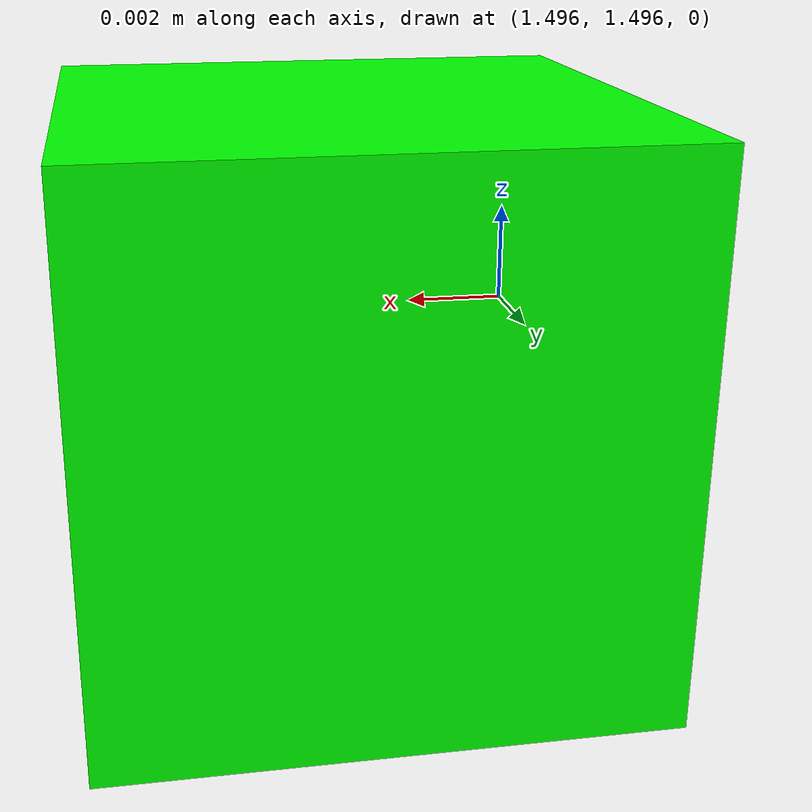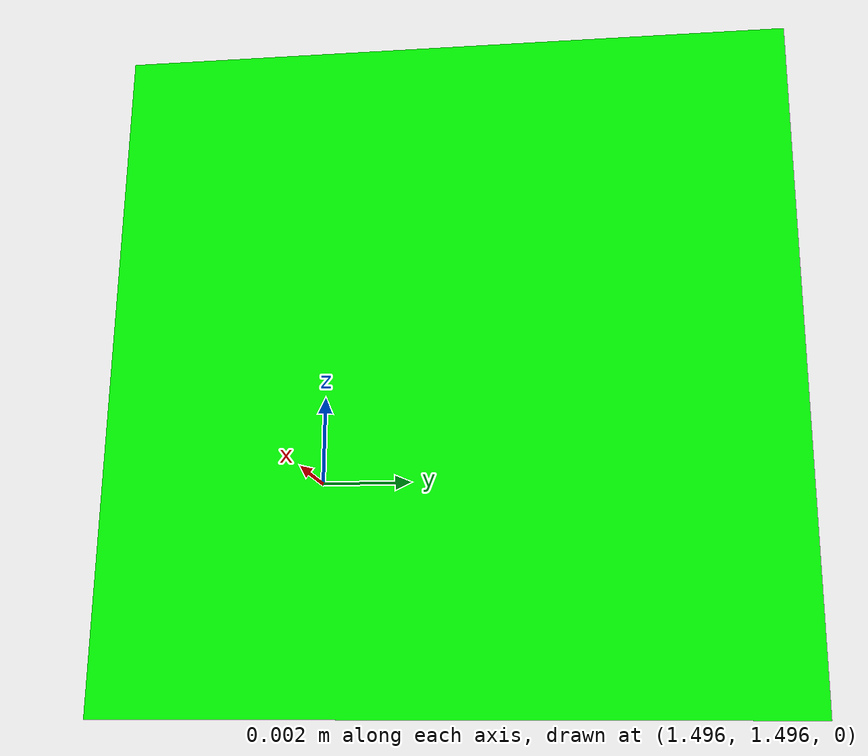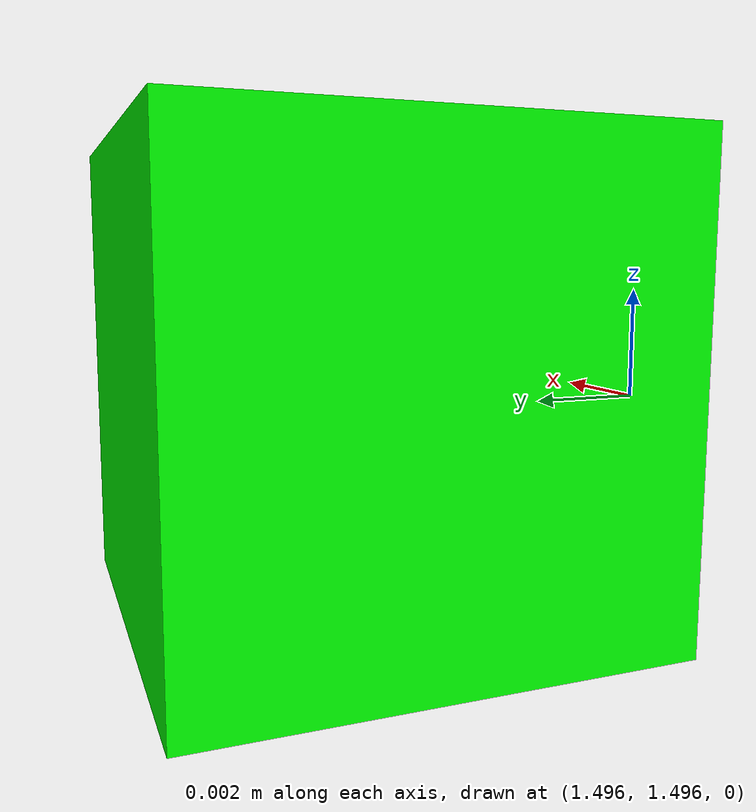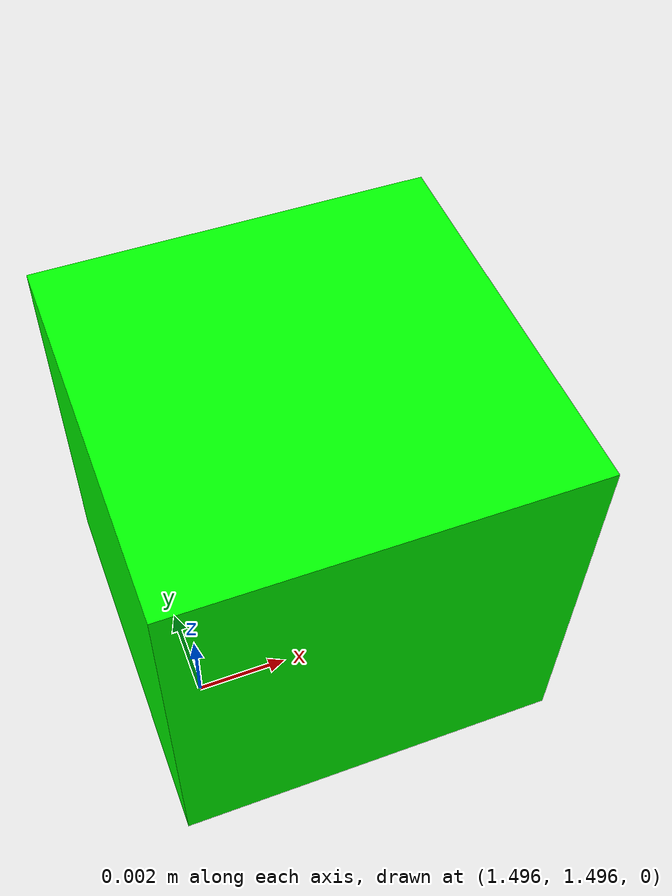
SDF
<?xml version="1.0" ?>
<sdf version="1.4">
  <model name="source_8">
    <pose>1.5 1.5 0 0 0 0</pose>
    <static>true</static>
    <link name="link">
      <collision name="collision">
        <geometry>
          <box>
            <size>0.01 0.01 0.01</size>
          </box>
        </geometry>
      </collision>
      <visual name="visual">
        <geometry>
          <box>
            <size>0.01 0.01 0.01</size>
          </box>
        </geometry>
        <material>
          <ambient>0 1 0 1</ambient>
          <diffuse>0 1 0 1</diffuse>
        </material>
      </visual>
      <sensor name="radiation_source_8" type="radiation_source">
        <always_on> 1 </always_on>
        <update_rate> 1.0 </update_rate>
        <topic>souce_8/gamma</topic>
        <plugin filename="libradiation_source_plugin.so" name="radiation_source_plugin" />
      </sensor>
    </link>
  </model>
</sdf>
